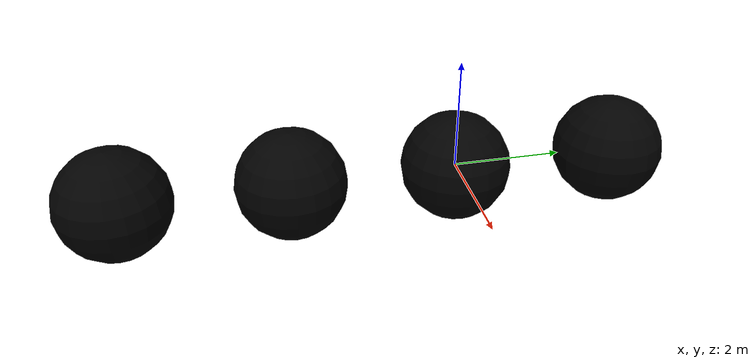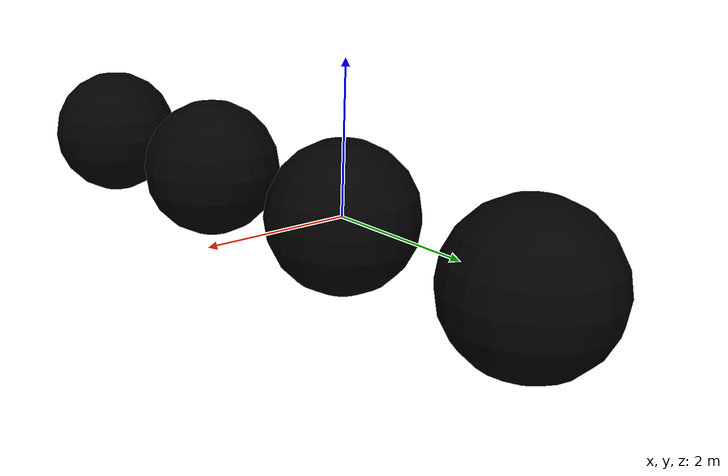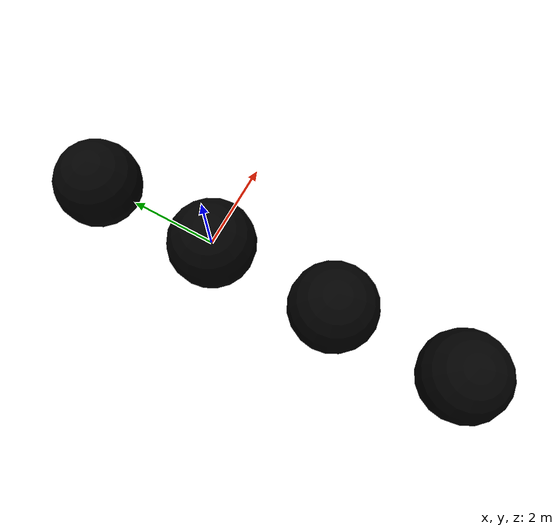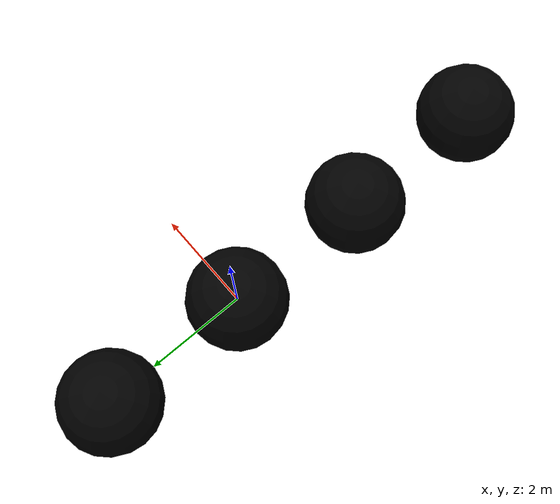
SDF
<?xml version="1.0" ?>
<sdf version="1.6">
  <world name="empty">
    <physics name="fast" type="ignored">
      <max_step_size>0.001</max_step_size>
      <real_time_factor>0</real_time_factor>
    </physics>
    <plugin
      filename="gz-sim-physics-system"
      name="gz::sim::systems::Physics">
    </plugin>
    <plugin
      filename="gz-sim-user-commands-system"
      name="gz::sim::systems::UserCommands">
    </plugin>
    <plugin
      filename="gz-sim-scene-broadcaster-system"
      name="gz::sim::systems::SceneBroadcaster">
    </plugin>
    <plugin
      filename="gz-sim-contact-system"
      name="gz::sim::systems::Contact">
    </plugin>

    <light type="directional" name="sun">
      <cast_shadows>true</cast_shadows>
      <pose>0 0 10 0 0 0</pose>
      <diffuse>0.8 0.8 0.8 1</diffuse>
      <specular>0.2 0.2 0.2 1</specular>
      <attenuation>
        <range>1000</range>
        <constant>0.9</constant>
        <linear>0.01</linear>
        <quadratic>0.001</quadratic>
      </attenuation>
      <direction>-0.5 0.1 -0.9</direction>
    </light>

    <model name="sphere">
      <link name="sphere_link">
        <visual name="sphere_visual">
          <pose>0 -6 0 0 0 0</pose>
          <geometry>
            <sphere>
              <size>1 1 1</size>
            </sphere>
          </geometry>
          <material>
            <ambient>0 0 0 1</ambient>
            <diffuse>0 0 0 1</diffuse>
            <specular>1 1 1 1</specular>
          </material>
        </visual>
      </link>
    </model>

    <model name="sphere2">
      <link name="sphere2_link">
        <visual name="sphere2_visual">
          <pose>0 -3 0 0 0 0</pose>
          <geometry>
            <sphere>
              <size>1 1 1</size>
            </sphere>
          </geometry>
          <material>
            <ambient>0 0 0 1</ambient>
            <diffuse>0 0 0 1</diffuse>
            <specular>1 1 1 1</specular>
            <shininess>1</shininess>
          </material>
        </visual>
      </link>
    </model>

    <model name="sphere3">
      <link name="sphere3_link">
        <visual name="sphere3_visual">
          <pose>0 0 0 0 0 0</pose>
          <geometry>
            <sphere>
              <size>1 1 1</size>
            </sphere>
          </geometry>
          <material>
            <ambient>0 0 0 1</ambient>
            <diffuse>0 0 0 1</diffuse>
            <specular>1 1 1 1</specular>
            <shininess>5</shininess>
          </material>
        </visual>
      </link>
    </model>

    <model name="sphere4">
      <link name="sphere4_link">
        <visual name="sphere4_visual">
          <pose>0 3 0 0 0 0</pose>
          <geometry>
            <sphere>
              <size>1 1 1</size>
            </sphere>
          </geometry>
          <material>
            <ambient>0 0 0 1</ambient>
            <diffuse>0 0 0 1</diffuse>
            <specular>1 1 1 1</specular>
            <shininess>10</shininess>
          </material>
        </visual>
      </link>
    </model>
  </world>
</sdf>
